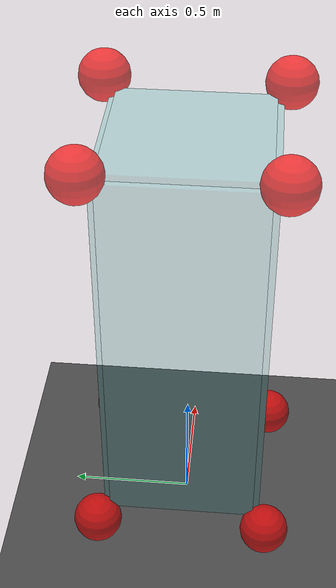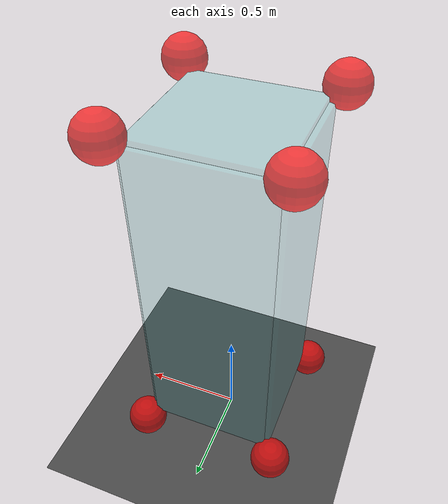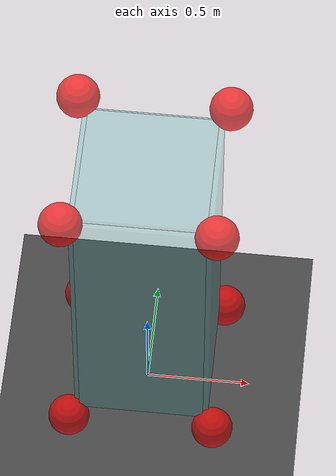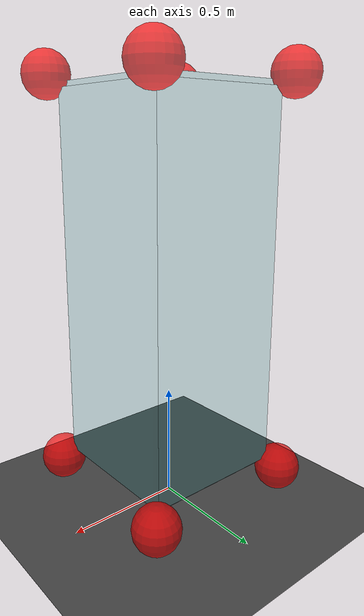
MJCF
<mujoco model="DynaBox">

  <compiler angle="degree" />
  <option gravity="0 0 -9.8" />
  <asset>
    <texture name="texplane" type="2d" builtin="checker" rgb1=".25 .25 .25" rgb2=".3 .3 .3"
      width="512" height="512" mark="cross" markrgb=".8 .8 .8" />
    <material name="matplane" reflectance="0.3" texture="texplane" texrepeat="1 1" texuniform="true" />
  </asset>
  <default>
    <default class="SHORTPLATE">
      <geom type="box" size="0.3 0.3 0.025" rgba="0 0.6 0.6 0.1" />
    </default>
    <default class="LONGPLATE">
      <geom type="box" size="0.025 0.3 0.8" rgba="0 0.6 0.6 0.1" />
    </default>
    <default class="BALL">
      <geom type="sphere" size="0.1" rgba="1 0 0 0.7" />
    </default>
    <default class="REACTION_WHEEL">
      <geom type="box" size="0.06 0.06 0.05" rgba="0.2 0.8 0.2 0.5" />
      <joint type="hinge" axis="0 0 1" pos="0 0 0" limited="false" />
    </default>
    <velocity ctrlrange="-1000 1000" ctrllimited="true" forcelimited="false" />
    <motor ctrllimited="false" />
  </default>
  <worldbody>
    <body name="FLOOR">
      <geom name="floor" pos="0 0 0" size="0 0 1" type="plane" material="matplane"/>
    </body>
    <light directional="true" diffuse=".8 .8 .8" specular=".2 .2 .2" pos="0 0 5" dir="0 0 -1"/>
    <body name="CENTER" pos="0 0 1">
      <joint type="free" />
      <inertial mass="0.1" pos="0 0 0" diaginertia="0.00017 0.00017 0.00017" />
      <!-- MARK:SHELL PLATES -->
      <body name="BOTTOM_PLATE" pos="0 0 -0.8">
        <inertial mass="0.1" pos="0 0 0" diaginertia="0.003 0.003 0.006" />
        <geom class="SHORTPLATE" />
      </body>
      <body name="TOP_PLATE" pos="0 0 0.8">
        <inertial mass="0.1" pos="0 0 0" diaginertia="0.003 0.003 0.006" />
        <geom class="SHORTPLATE" />
      </body>
      <body name="FRONT_PLATE" pos="0.3 0 0">
        <inertial mass="0.1" pos="0 0 0" diaginertia="0.024 0.021 0.003" />
        <geom class="LONGPLATE" />
      </body>
      <body name="BACK_PLATE" pos="-0.3 0 0">
        <inertial mass="0.1" pos="0 0 0" diaginertia="0.024 0.021 0.003" />
        <geom class="LONGPLATE" />
      </body>
      <body name="LEFT_PLATE" pos="0 0.3 0" axisangle="0 0 1 90">
        <inertial mass="0.1" pos="0 0 0" diaginertia="0.024 0.021 0.003" />
        <geom class="LONGPLATE" />
      </body>
      <body name="RIGHT_PLATE" pos="0 -0.3 0" axisangle="0 0 1 90">
        <inertial mass="0.1" pos="0 0 0" diaginertia="0.024 0.021 0.003" />
        <geom class="LONGPLATE" />
      </body>
      <!-- MARK: CONTACT BALLS -->
      <body name="BALL_+++" pos="0.35 0.35 0.85">
        <inertial mass="0.0125" pos="0 0 0" diaginertia="0.00005 0.00005 0.00005" />
        <geom class="BALL" />
      </body>
      <body name="BALL_++-" pos="0.35 0.35 -0.85">
        <inertial mass="0.0125" pos="0 0 0" diaginertia="0.00005 0.00005 0.00005" />
        <geom class="BALL" />
      </body>
      <body name="BALL_+-+" pos="0.35 -0.35 0.85">
        <inertial mass="0.0125" pos="0 0 0" diaginertia="0.00005 0.00005 0.00005" />
        <geom class="BALL" />
      </body>
      <body name="BALL_-++" pos="-0.35 0.35 0.85">
        <inertial mass="0.0125" pos="0 0 0" diaginertia="0.00005 0.00005 0.00005" />
        <geom class="BALL" />
      </body>
      <body name="BALL_+--" pos="0.35 -0.35 -0.85">
        <inertial mass="0.0125" pos="0 0 0" diaginertia="0.00005 0.00005 0.00005" />
        <geom class="BALL" />
      </body>
      <body name="BALL_-+-" pos="-0.35 0.35 -0.85">
        <inertial mass="0.0125" pos="0 0 0" diaginertia="0.00005 0.00005 0.00005" />
        <geom class="BALL" />
      </body>
      <body name="BALL_--+" pos="-0.35 -0.35 0.85">
        <inertial mass="0.0125" pos="0 0 0" diaginertia="0.00005 0.00005 0.00005" />
        <geom class="BALL" />
      </body>
      <body name="BALL_---" pos="-0.35 -0.35 -0.85">
        <inertial mass="0.0125" pos="0 0 0" diaginertia="0.00005 0.00005 0.00005" />
        <geom class="BALL" />
      </body>
      <!-- MARK:REACTION WHEEL -->
      <body name="REACTION_UNIT_BASE">
        <joint name="REACTION_UNIT_PRISMATIC" type="slide" axis="0 0 1" limited="true"
          range="-0.4 0.4" />
        <inertial mass="2" pos="0 0 0" diaginertia="0.0074 0.0074 0.011" />
        <geom type="box" size="0.05 0.05 0.05" rgba="0.8 0.8 0.2 0.5" />
        <!-- wheel base4つの質量と慣性モーメントを統合するとこうなる-->
        <body name="REACTION_WHEEL_FRONT" pos="0.1625 0 0" axisangle="0 1 0 90">
          <!-- wheelは各方向で統合する -->
          <inertial mass="3" pos="0 0 0" diaginertia="1.92 3.84 1.92" />
          <geom class="REACTION_WHEEL" />
          <joint name="REACTION_WHEEL_FRONT_JOINT" class="REACTION_WHEEL" />
        </body>

        <body name="REACTION_WHEEL_BACK" pos="-0.1625 0 0" axisangle="0 1 0 90">
          <inertial mass="3" pos="0 0 0" diaginertia="1.92 3.84 1.92" />
          <geom class="REACTION_WHEEL" />
          <joint name="REACTION_WHEEL_BACK_JOINT" class="REACTION_WHEEL" /><!-- .bodyファイルに合わせて、反転する -->
        </body>
        <body name="REACTION_WHEEL_LEFT" pos="0 0.1625 0" axisangle="1 0 0 90">
          <inertial mass="3" pos="0 0 0" diaginertia="1.92 3.84 1.92" />
          <geom class="REACTION_WHEEL" />
          <joint name="REACTION_WHEEL_LEFT_JOINT" class="REACTION_WHEEL" />
        </body>
        <body name="REACTION_WHEEL_RIGHT" pos="0 -0.1625 0" axisangle="1 0 0 90">
          <inertial mass="3" pos="0 0 0" diaginertia="1.92 3.84 1.92" />
          <geom class="REACTION_WHEEL" />
          <joint name="REACTION_WHEEL_RIGHT_JOINT" class="REACTION_WHEEL" />
        </body>
        <body name="REACTION_WHEEL_TOP" pos="0 0 0.1625">
          <inertial mass="3" pos="0 0 0" diaginertia="1.92 3.84 1.92" />
          <geom class="REACTION_WHEEL" />
          <joint name="REACTION_WHEEL_TOP_JOINT" class="REACTION_WHEEL" />
        </body>
        <body name="REACTION_WHEEL_BOTTOM" pos="0 0 -0.1625">
          <inertial mass="3" pos="0 0 0" diaginertia="1.92 3.84 1.92" />
          <geom class="REACTION_WHEEL" />
          <joint name="REACTION_WHEEL_BOTTOM_JOINT" class="REACTION_WHEEL" />
        </body>
      </body>
    </body>
  </worldbody>

  <actuator>
    <motor name="j0" joint="REACTION_UNIT_PRISMATIC" />
    <motor name="j1" joint="REACTION_WHEEL_FRONT_JOINT" />
    <motor name="j2" joint="REACTION_WHEEL_BACK_JOINT" />
    <motor name="j3" joint="REACTION_WHEEL_LEFT_JOINT" />
    <motor name="j4" joint="REACTION_WHEEL_RIGHT_JOINT" />
    <motor name="j5" joint="REACTION_WHEEL_TOP_JOINT" />
    <motor name="j6" joint="REACTION_WHEEL_BOTTOM_JOINT" />

  </actuator>

</mujoco>
